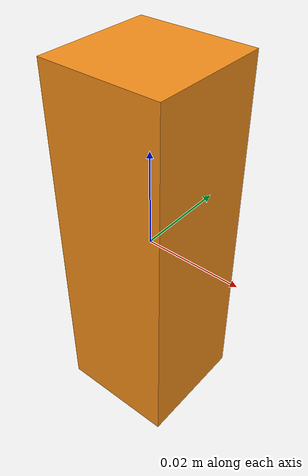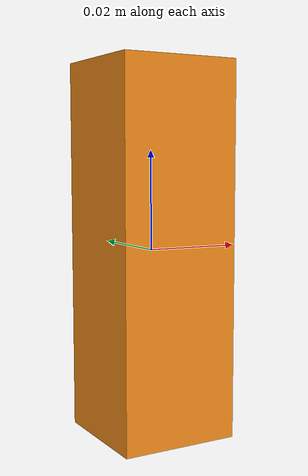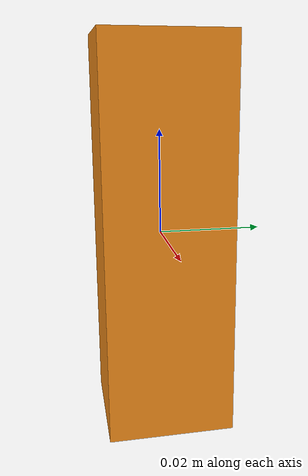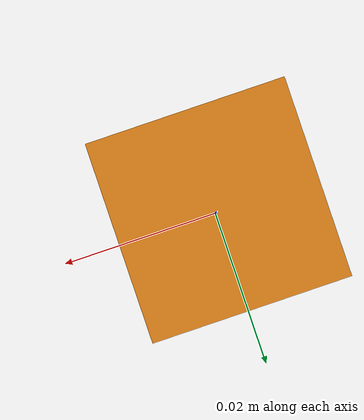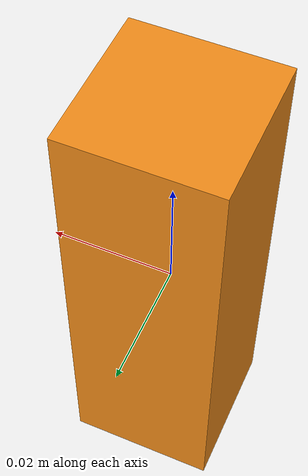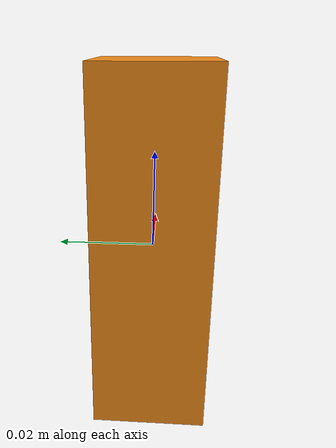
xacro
<?xml version="1.0"?>
<!-- Revolute-Revolute Manipulator -->
<robot name="cuboid_4" xmlns:xacro="http://www.ros.org/wiki/xacro">

  <!-- Constants for robot dimensions -->
  <xacro:property name="PI" value="3.1415926535897931"/>
  <xacro:property name="mass" value="0.01" /> <!-- arbitrary value for mass -->

  <xacro:include filename="$(find object_description)/urdf/materials.xacro" />

  <link name="world"/>

  <joint name="world_cuboid_4" type="floating">
    <parent link="world"/>
    <child link="cuboid_4"/>
    <origin xyz="0 0 0" rpy="0 0 ${PI/4}"/>
  </joint>

  <!-- table -->
  <link name="cuboid_4">

    <visual>
      <origin xyz="0 0 0" rpy="0 0 0"/>
      <geometry>
	<mesh filename="package://object_description/meshes/cuboid_4.stl" scale="1 1 1" />
      </geometry>
      <material name="orange"/>
    </visual>

    <collision>
      <origin xyz="0 0 0" rpy="0 0 0"/>
      <geometry>
	<mesh filename="package://object_description/meshes/cuboid_4.stl" scale="1 1 1" />
      </geometry>
    </collision>

    <inertial>
      <origin xyz="0 0 0" rpy="0 0 0"/>
      <mass value="${mass}"/>
      <inertia
	  ixx="0.00000364583333" ixy="0.0" ixz="0.0"
	  iyy="0.00000364583333" iyz="0.0"
	  izz="0.000003125" />
    </inertial>
  </link>

  <gazebo reference="cuboid_4">
    <material>Gazebo/Wood</material>
    <mu1>5000</mu1>
    <mu2>5000</mu2>
    <kp>10000.0</kp>
    <kd>1.0</kd>
  </gazebo>

</robot>
